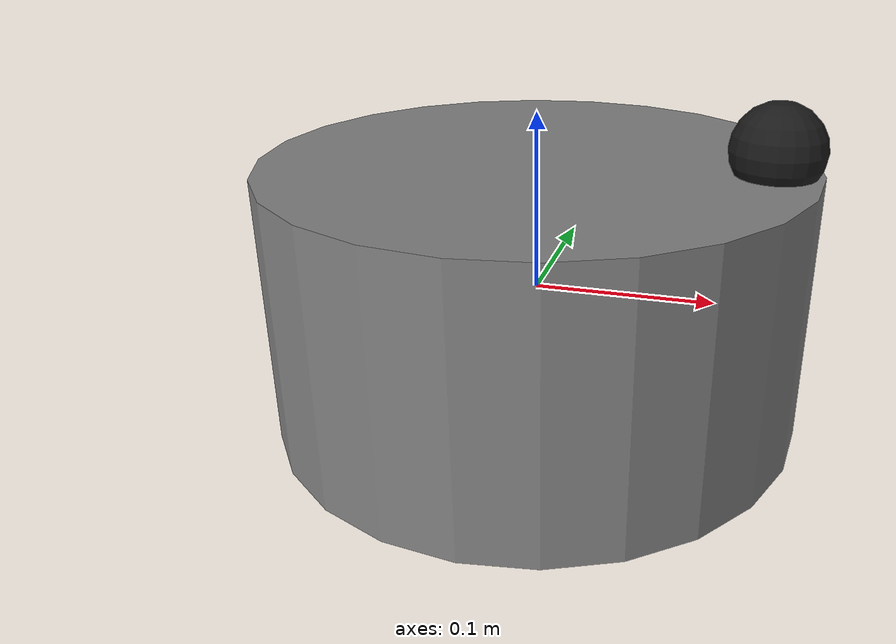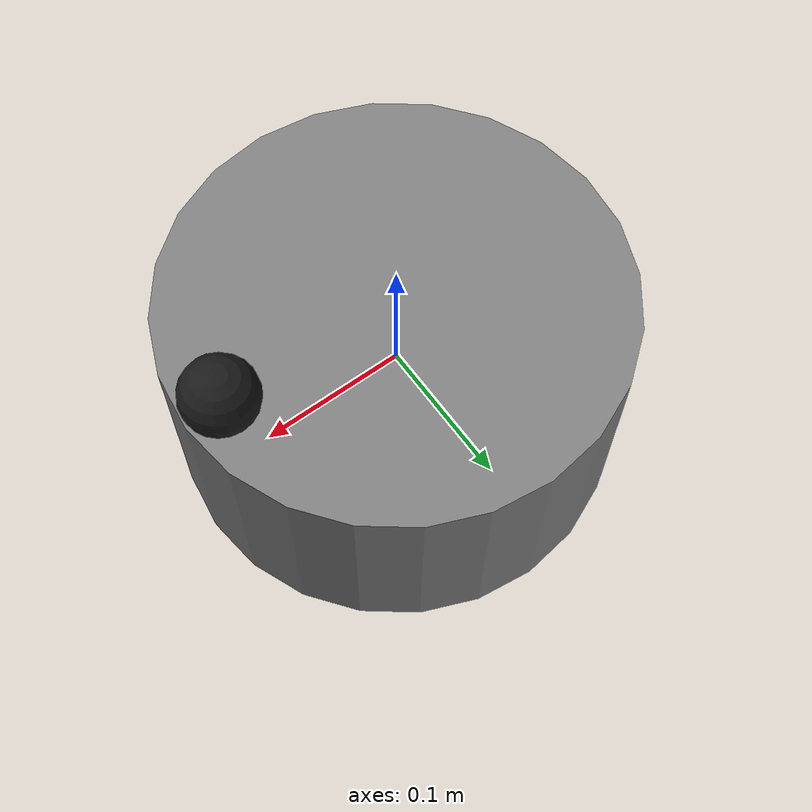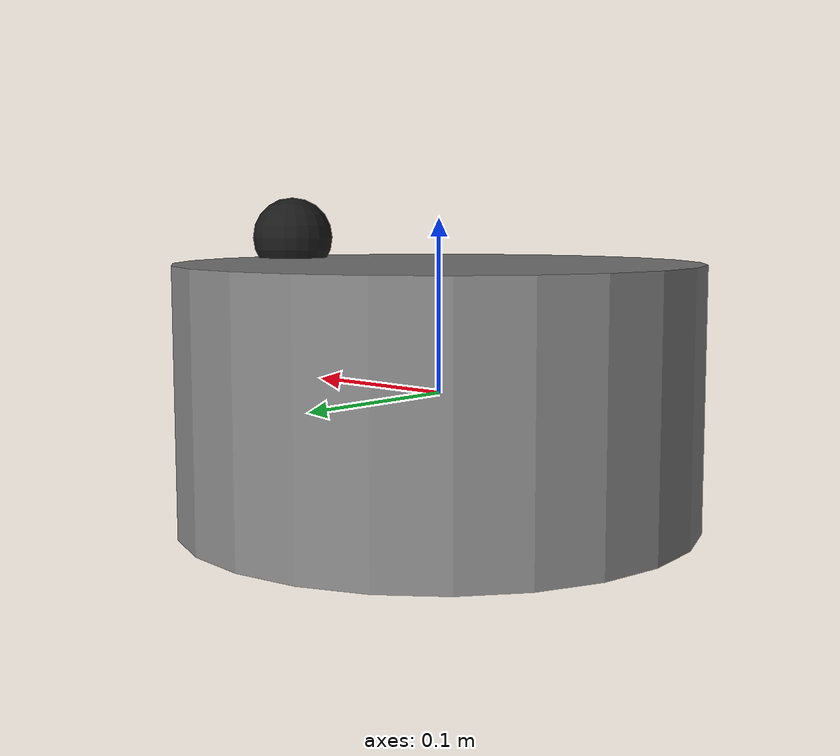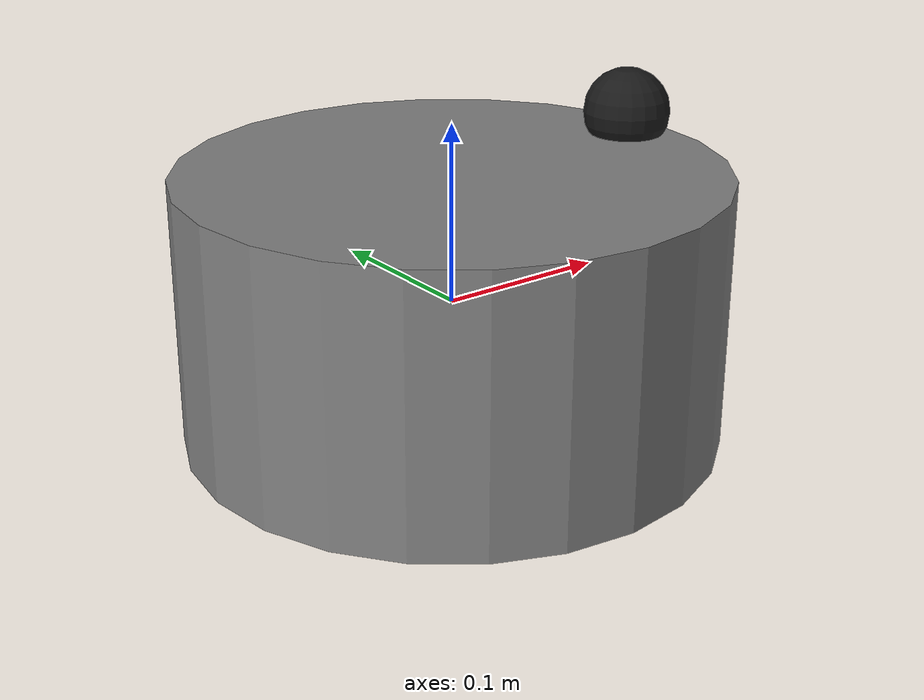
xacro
<?xml version="1.0"?>
<robot name="swarm_robot" xmlns:xacro="http://www.ros.org/wiki/xacro">

  <xacro:arg name="robot_name"  default="robot_0"/>
  <!-- RGBA string, например "0 1 1 1" для cyan -->
  <xacro:arg name="robot_color" default="0.5 0.5 0.5 1"/>

  <xacro:property name="rname"  value="$(arg robot_name)"/>
  <xacro:property name="rcolor" value="$(arg robot_color)"/>

  <xacro:property name="body_radius" value="0.15"/>
  <xacro:property name="body_z"      value="0.15"/>
  <xacro:property name="nose_radius" value="0.025"/>

  <material name="${rname}_body_color">
    <color rgba="${rcolor}"/>
  </material>

  <material name="${rname}_nose_color">
    <color rgba="0.1 0.1 0.1 1.0"/>
  </material>

  <!-- base_link — цилиндрический корпус. Корень дерева (Stage публикует
       odom → base_link напрямую). -->
  <link name="${rname}/base_link">
    <visual>
      <origin xyz="0 0 0" rpy="0 0 0"/>
      <geometry>
        <cylinder radius="${body_radius}" length="${body_z}"/>
      </geometry>
      <material name="${rname}_body_color"/>
    </visual>
  </link>

  <!-- "Пимпочка" — маркер фронта робота: сфера у переднего края крыши, +X = вперёд -->
  <link name="${rname}/front_marker">
    <visual>
      <origin xyz="0 0 0" rpy="0 0 0"/>
      <geometry>
        <sphere radius="${nose_radius}"/>
      </geometry>
      <material name="${rname}_nose_color"/>
    </visual>
  </link>

  <joint name="${rname}/front_marker_joint" type="fixed">
    <parent link="${rname}/base_link"/>
    <child  link="${rname}/front_marker"/>
    <origin xyz="${body_radius - nose_radius} 0 ${body_z/2 + nose_radius/2}" rpy="0 0 0"/>
  </joint>

</robot>
